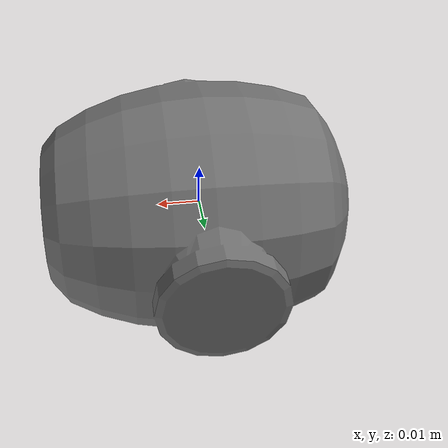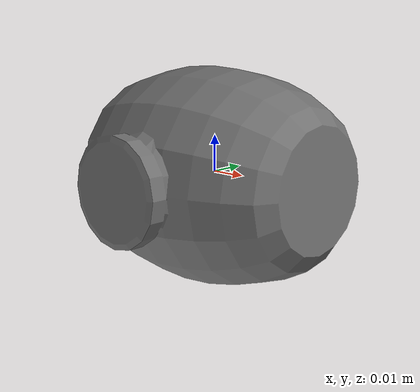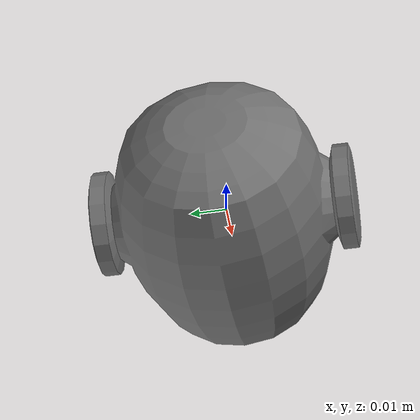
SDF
<?xml version="1.0"?>
<sdf version="1.6">
  <model name="zenmuse_z3">
    <static>true</static>
    <link name="robot_link">
      <collision name="collision">
        <geometry>
	  <mesh>
            <uri>model://zenmuse_z3/meshes/zenmuse_z3.stl</uri>
          </mesh>
        </geometry>
      </collision>

      <visual name="visual">
        <pose>0 0 0 0 0 0</pose>
        <geometry>
	  <mesh>
            <uri>model://zenmuse_z3/meshes/zenmuse_z3.stl</uri>
          </mesh>
        </geometry>
        <material>
          <ambient>0.25 0.25 0.25 1.0</ambient>
          <diffuse>0.45 0.45 0.45 1.0</diffuse>
          <specular>0.05 0.05 0.05 1.0</specular>
        </material>
      </visual>
    </link>
  </model>
</sdf>
